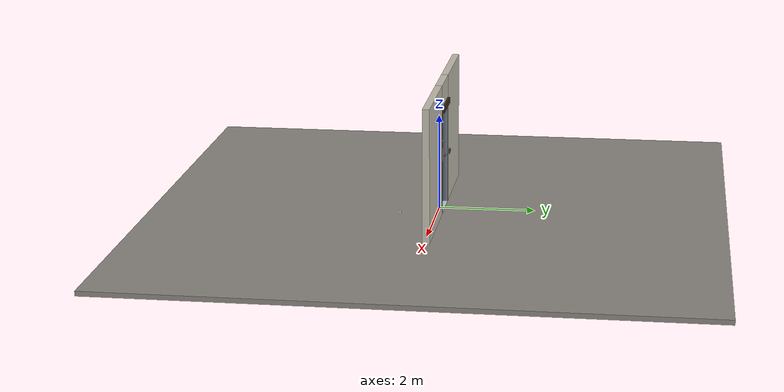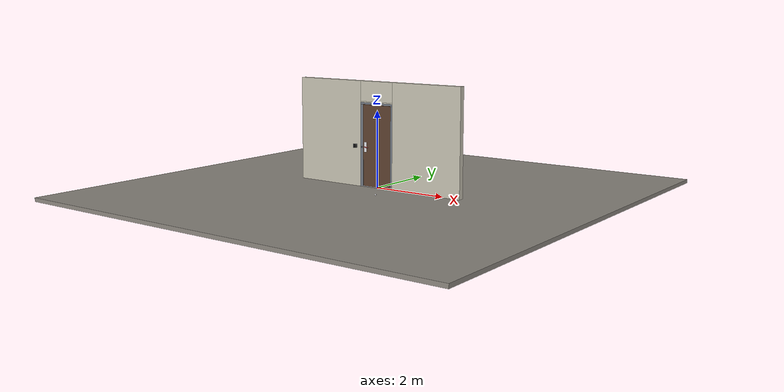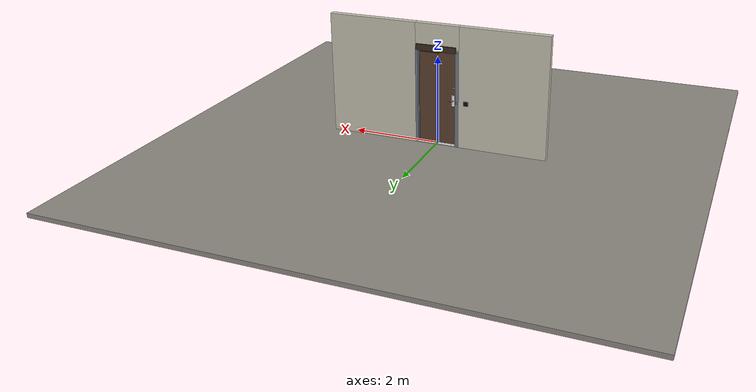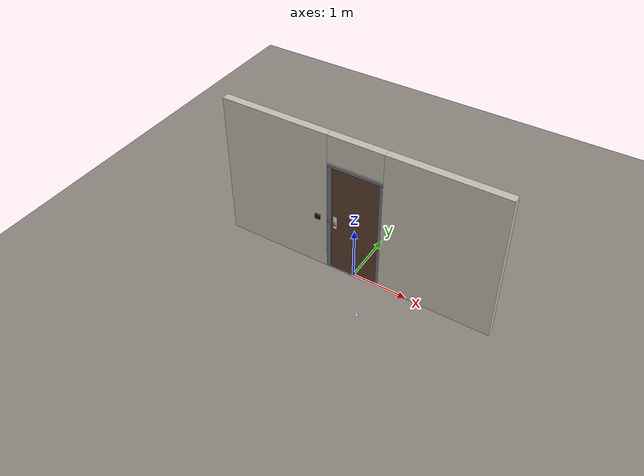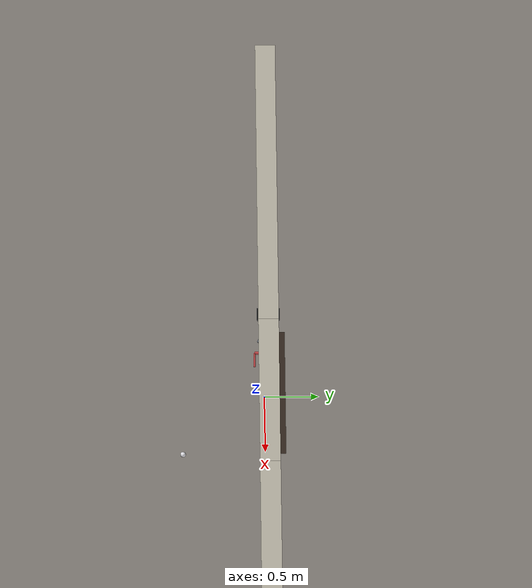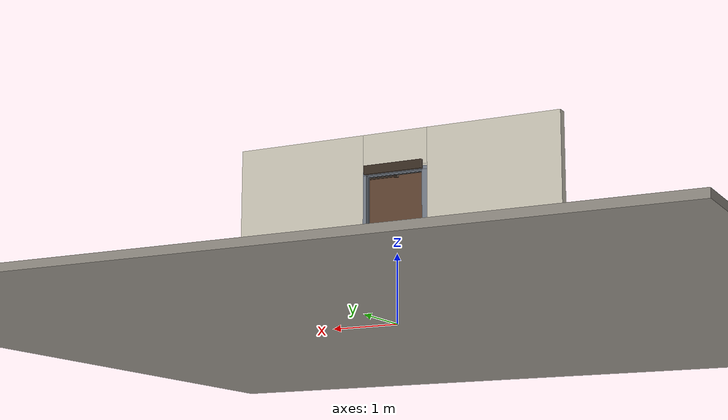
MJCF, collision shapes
<?xml version="1.0" ?>
<mujoco model="db0159_automatic_swing_full">
  <compiler angle="radian" meshdir="../../hardware" texturedir="../../textures" autolimits="true" inertiafromgeom="false"/>
  <option timestep="0.002" integrator="implicitfast" cone="elliptic" impratio="10" noslip_iterations="3">
    <flag multiccd="enable"/>
  </option>
  <size memory="16M"/>
  <default>
    <geom condim="4" solref="0.005 1" solimp="0.95 0.99 0.001"/>
    <joint solreflimit="0.005 1" solimplimit="0.95 0.99 0.001"/>
    <tendon solreflimit="0.005 1"/>
    <equality solref="0.002 1"/>
  </default>
  <visual>
    <headlight ambient="0.4 0.4 0.4" diffuse="0.7 0.7 0.7" specular="0.2 0.2 0.2"/>
    <quality shadowsize="4096"/>
    <map znear="0.01" zfar="60"/>
  </visual>
  <asset>
    <mesh name="card_reader_38c0bdb077" file="card_reader_38c0bdb077.obj"/>
    <mesh name="coat_hook_d622d37ad0" file="coat_hook_d622d37ad0.obj"/>
    <mesh name="hinge_e22b26c0c1" file="hinge_e22b26c0c1.obj"/>
    <mesh name="hinge_jamb_e1d088f8dc" file="hinge_jamb_e1d088f8dc.obj"/>
    <mesh name="lever_56c65af20a" file="lever_56c65af20a.obj"/>
    <mesh name="peephole_f829311a59" file="peephole_f829311a59.obj"/>
    <material name="mat_floor" rgba="0.55 0.53 0.5 1" specular="0.2" shininess="0.15" reflectance="0"/>
    <material name="mat_wall" rgba="0.78 0.76 0.7 1" specular="0.2" shininess="0.1" reflectance="0"/>
    <material name="mat_leaf" rgba="0.36 0.25 0.18 1" specular="0.2" shininess="0.55" reflectance="0"/>
    <material name="mat_hinge" rgba="0.65 0.66 0.68 1" specular="0.74" shininess="0.5" reflectance="0.36"/>
    <material name="mat_op_chrome" rgba="0.9 0.9 0.92 1" specular="0.8" shininess="0.9" reflectance="0.4"/>
    <material name="mat_trim" rgba="0.85 0.66 0.3 1" specular="0.8" shininess="0.75" reflectance="0.4"/>
    <material name="mat_reader" rgba="0.05 0.05 0.05 1" specular="0.38" shininess="0.3" reflectance="0.12"/>
    <material name="mat_bolt" rgba="0.75 0.76 0.77 1" specular="0.8" shininess="0.65" reflectance="0.4"/>
    <material name="mat_guard" rgba="0.75 0.76 0.77 1" specular="0.8" shininess="0.65" reflectance="0.4"/>
    <material name="mat_frame" rgba="0.45 0.48 0.52 1" specular="0.32" shininess="0.6" reflectance="0.08"/>
    <material name="mat_seal" rgba="0.1 0.1 0.1 1" specular="0.2" shininess="0.1" reflectance="0"/>
    <material name="mat_threshold" rgba="0.8 0.81 0.83 1" specular="0.8" shininess="0.6" reflectance="0.4"/>
    <material name="mat_closer" rgba="0.22 0.17 0.13 1" specular="0.8" shininess="0.6" reflectance="0.4"/>
    <material name="mat_peephole" rgba="0.85 0.66 0.3 1" specular="0.8" shininess="0.75" reflectance="0.4"/>
    <material name="mat_hook" rgba="0.9 0.9 0.92 1" specular="0.8" shininess="0.9" reflectance="0.4"/>
    <material name="mat_wallreader" rgba="0.05 0.05 0.05 1" specular="0.38" shininess="0.3" reflectance="0.12"/>
    <material name="mat_stop" rgba="0.9 0.9 0.92 1" specular="0.8" shininess="0.9" reflectance="0.4"/>
    <texture name="skybox" type="skybox" builtin="gradient" rgb1="0.6 0.7 0.85" rgb2="0.9 0.92 0.95" width="256" height="256"/>
  </asset>
  <worldbody>
    <light name="sun" pos="1.5 -2.5 4" dir="-0.3 0.5 -0.8" directional="true" diffuse="0.8 0.8 0.8" specular="0.3 0.3 0.3" castshadow="true"/>
    <light name="fill" pos="-1.5 2.5 3" dir="0.3 -0.5 -0.7" directional="true" diffuse="0.35 0.35 0.4" castshadow="false"/>
    <camera name="robot_view" pos="0 -2.594313 1.812087" xyaxes="1 0 0 0 0.26963 0.962964" fovy="52"/>
    <camera name="far_view" pos="0 2.681312 1.812087" xyaxes="-1 0 0 0 -0.26963 0.962964" fovy="52"/>
    <camera name="iso" pos="-2.004737 -2.172262 2.234138" xyaxes="0.741536 -0.670913 0 0.242917 0.268487 0.932151" fovy="46"/>
    <camera name="detail_handle" pos="-0.085 -0.877 1.32" xyaxes="0.97561 0.219512 0 -0.070934 0.315262 0.94635" fovy="38"/>
    <geom name="floor" type="box" size="6 6 0.05" pos="0 0 -0.05" material="mat_floor" group="0" contype="1" conaffinity="1" friction="0.8 0.005 0.0001" density="2400"/>
    <geom name="wall_left" type="box" size="0.992 0.0725 1.3735" pos="-1.508 0.0435 1.3735" material="mat_wall" group="0" contype="1" conaffinity="1" friction="0.6 0.005 0.0001" density="800"/>
    <geom name="wall_right" type="box" size="1.007 0.0725 1.3735" pos="1.493 0.0435 1.3735" material="mat_wall" group="0" contype="1" conaffinity="1" friction="0.6 0.005 0.0001" density="800"/>
    <geom name="wall_header" type="box" size="0.501 0.0725 0.26" pos="-0.015 0.0435 2.487" material="mat_wall" group="0" contype="1" conaffinity="1" friction="0.6 0.005 0.0001" density="800"/>
    <geom name="hinge_0_jamb" type="mesh" mesh="hinge_jamb_e1d088f8dc" pos="0.433 -0.029 0.267" quat="0 0 1 0" material="mat_hinge" group="1" contype="0" conaffinity="0" density="7850"/>
    <geom name="hinge_1_jamb" type="mesh" mesh="hinge_jamb_e1d088f8dc" pos="0.433 -0.029 1.08" quat="0 0 1 0" material="mat_hinge" group="1" contype="0" conaffinity="0" density="7850"/>
    <geom name="hinge_2_jamb" type="mesh" mesh="hinge_jamb_e1d088f8dc" pos="0.433 -0.029 1.963" quat="0 0 1 0" material="mat_hinge" group="1" contype="0" conaffinity="0" density="7850"/>
    <geom name="leaf_guard_bar" type="box" size="0.06 0.006 0.01" pos="-0.451 0.052 1.34" material="mat_guard" group="1" contype="0" conaffinity="0" density="7900"/>
    <geom name="jamb_hinge" type="box" size="0.025 0.0725 1.0735" pos="0.461 0.0435 1.0735" material="mat_frame" group="0" contype="1" conaffinity="1" friction="0.6 0.005 0.0001" density="300"/>
    <geom name="strike_1040_wall_n" type="box" size="0.04 0.05325 0.018" pos="-0.476 0.06275 1.04" material="mat_frame" group="0" contype="1" conaffinity="1" friction="0.6 0.005 0.0001" density="300"/>
    <geom name="strike_1040_wall_p" type="box" size="0.04 0.008 0.018" pos="-0.476 -0.0175 1.04" material="mat_frame" group="0" contype="1" conaffinity="1" friction="0.6 0.005 0.0001" density="300"/>
    <geom name="strike_1040_ramp" type="box" size="0.04 0.018028 0.018" pos="-0.479282 -0.018312 1.04" quat="0.957092 0 0 -0.289784" material="mat_frame" group="0" contype="1" conaffinity="1" friction="0.12 0.005 0.0001" density="300"/>
    <geom name="strike_1040_back" type="box" size="0.0285 0.0095 0.018" pos="-0.4875 0 1.04" material="mat_frame" group="0" contype="1" conaffinity="1" friction="0.6 0.005 0.0001" density="300"/>
    <geom name="jamb_strike_0" type="box" size="0.04 0.0725 0.511" pos="-0.476 0.0435 0.511" material="mat_frame" group="0" contype="1" conaffinity="1" friction="0.6 0.005 0.0001" density="300"/>
    <geom name="jamb_strike_1" type="box" size="0.04 0.0725 0.5445" pos="-0.476 0.0435 1.6025" material="mat_frame" group="0" contype="1" conaffinity="1" friction="0.6 0.005 0.0001" density="300"/>
    <geom name="jamb_head" type="box" size="0.501 0.0725 0.025" pos="-0.015 0.0435 2.172" material="mat_frame" group="0" contype="1" conaffinity="1" friction="0.6 0.005 0.0001" density="300"/>
    <geom name="head_stud" type="box" size="0.501 0.0725 0.015" pos="-0.015 0.0435 2.212" material="mat_wall" group="0" contype="1" conaffinity="1" friction="0.6 0.005 0.0001" density="500"/>
    <geom name="stop_hinge" type="box" size="0.0055 0.016 1.0735" pos="0.4305 0.0385 1.0735" material="mat_frame" group="0" contype="1" conaffinity="1" friction="0.6 0.005 0.0001" density="300"/>
    <geom name="stop_strike" type="box" size="0.0055 0.016 1.0735" pos="-0.4305 0.0385 1.0735" material="mat_frame" group="0" contype="1" conaffinity="1" friction="0.6 0.005 0.0001" density="300"/>
    <geom name="stop_head" type="box" size="0.436 0.016 0.0055" pos="0 0.0385 2.1415" material="mat_frame" group="0" contype="1" conaffinity="1" friction="0.6 0.005 0.0001" density="300"/>
    <geom name="seal_hinge" type="box" size="0.004 0.004 1.0735" pos="0.433 0.026 1.0735" material="mat_seal" group="1" contype="0" conaffinity="0" density="1100"/>
    <geom name="seal_strike" type="box" size="0.004 0.004 1.0735" pos="-0.433 0.026 1.0735" material="mat_seal" group="1" contype="0" conaffinity="0" density="1100"/>
    <geom name="seal_head" type="box" size="0.416 0.004 0.008" pos="0 0.026 2.135" material="mat_seal" group="1" contype="0" conaffinity="0" density="1100"/>
    <geom name="threshold" type="box" size="0.486 0.0725 0.0065" pos="0 0.0435 0.0065" material="mat_threshold" group="0" contype="1" conaffinity="1" friction="0.5 0.005 0.0001" density="2700"/>
    <geom name="auto_operator_header" type="box" size="0.45 0.065 0.065" pos="0 0.097 2.22" material="mat_closer" group="0" contype="1" conaffinity="1" friction="0.6 0.005 0.0001" density="1500"/>
    <geom name="wave_sensor_n" type="box" size="0.05 0.012 0.05" pos="-0.686 -0.041 1.05" material="mat_wallreader" group="0" contype="1" conaffinity="1" friction="0.6 0.005 0.0001" density="1000"/>
    <geom name="wave_sensor_p" type="box" size="0.05 0.012 0.05" pos="-0.686 0.128 1.05" material="mat_wallreader" group="0" contype="1" conaffinity="1" friction="0.6 0.005 0.0001" density="1000"/>
    <geom name="wave_sensor_p_pad" type="box" size="0.04 0.073 0.04" pos="-0.686 0.0435 1.05" material="mat_wallreader" group="1" contype="0" conaffinity="0" density="7850"/>
    <geom name="floor_stop_dome" type="sphere" size="0.025" pos="0.516931 -0.758862 0" material="mat_stop" group="0" contype="1" conaffinity="1" friction="0.6 0.005 0.0001" density="7000"/>
    <site name="approach_point" pos="0 -1.5 0" quat="1 0 0 0" size="0.05" rgba="0.2 0.9 0.2 0.5" group="4"/>
    <site name="goal_point" pos="0 1.5 0" quat="1 0 0 0" size="0.05" rgba="0.2 0.9 0.2 0.5" group="4"/>
    <site name="door_plane_center" pos="0 0 1.0735" quat="1 0 0 0" size="0.02" rgba="0.2 0.9 0.2 0.5" group="4"/>
    <body name="leaf" pos="0.436 0 0">
      <inertial pos="-0.436477 -0.00021 1.09219" mass="52.703252" quat="0.500563 -0.500344 -0.500211 -0.49888" diaginertia="3.450430152 19.801748654 23.23037945"/>
      <joint name="leaf_hinge" type="hinge" axis="0 0 1" pos="-0.003 -0.029 0" limited="true" range="0 0.078615" solreflimit="0.02 1" damping="15.214767" frictionloss="1.957652" stiffness="12.827888" springref="-1.543512" armature="0.02"/>
      <geom name="leaf_slab" type="box" size="0.432 0.022 1.063" pos="-0.435 0 1.08" material="mat_leaf" group="0" contype="1" conaffinity="1" friction="0.35 0.005 0.0001" density="1"/>
      <geom name="hinge_0" type="mesh" mesh="hinge_e22b26c0c1" pos="-0.003 -0.029 0.267" quat="0 0 1 0" material="mat_hinge" group="1" contype="0" conaffinity="0" density="7850"/>
      <geom name="hinge_1" type="mesh" mesh="hinge_e22b26c0c1" pos="-0.003 -0.029 1.08" quat="0 0 1 0" material="mat_hinge" group="1" contype="0" conaffinity="0" density="7850"/>
      <geom name="hinge_2" type="mesh" mesh="hinge_e22b26c0c1" pos="-0.003 -0.029 1.963" quat="0 0 1 0" material="mat_hinge" group="1" contype="0" conaffinity="0" density="7850"/>
      <geom name="leaf_handle_escutcheon_n" type="box" size="0.0375 0.0015 0.13" pos="-0.797 -0.0235 1.04" material="mat_op_chrome" group="1" contype="0" conaffinity="0" density="3000"/>
      <geom name="leaf_handle_escutcheon_p" type="box" size="0.0375 0.0015 0.13" pos="-0.797 0.0235 1.04" material="mat_op_chrome" group="1" contype="0" conaffinity="0" density="3000"/>
      <geom name="leaf_handle_reader" type="mesh" mesh="card_reader_38c0bdb077" pos="-0.797 -0.022 1.2" quat="0.707107 0.707107 0 0" material="mat_reader" group="1" contype="0" conaffinity="0" density="2000"/>
      <geom name="leaf_latch_bolt_faceplate" type="box" size="0.0006 0.014 0.028" pos="-0.8664 0 1.04" material="mat_bolt" group="1" contype="0" conaffinity="0" density="8500"/>
      <geom name="leaf_guard_stud" type="cylinder" size="0.01 0.015" pos="-0.817 0.037 1.34" quat="0.707107 -0.707107 0 0" material="mat_guard" group="1" contype="0" conaffinity="0" density="7900"/>
      <geom name="auto_operator_arm" type="box" size="0.22 0.008 0.008" pos="-0.25 0.052 2.106" material="mat_closer" group="1" contype="0" conaffinity="0" density="2700"/>
      <geom name="auto_operator_arm_shoe" type="box" size="0.03 0.016 0.014" pos="-0.44 0.038 2.106" material="mat_closer" group="1" contype="0" conaffinity="0" density="2700"/>
      <geom name="peephole" type="mesh" mesh="peephole_f829311a59" pos="-0.435 -0.022 1.517" quat="0 0 -0.707107 0.707107" material="mat_peephole" group="2" contype="0" conaffinity="0" density="8500"/>
      <geom name="coat_hook" type="mesh" mesh="coat_hook_d622d37ad0" pos="-0.435 0.022 1.793" quat="0 0 0.707107 0.707107" material="mat_hook" group="2" contype="0" conaffinity="0" density="7000"/>
      <site name="leaf_edge_mid" pos="-0.867 0 1.063" quat="1 0 0 0" size="0.02" rgba="0.2 0.9 0.2 0.5" group="4"/>
      <body name="leaf_handle" pos="-0.797 0 1.04">
        <inertial pos="0.034904 0 0" mass="0.739068" quat="0.707107 0 0 -0.707107" diaginertia="0.001260094 0.003272501 0.004494637"/>
        <joint name="leaf_handle_hinge" type="hinge" axis="0 1 0" limited="true" range="0 0.87" damping="0.231314" frictionloss="0.06" stiffness="1.1" springref="-0.454545" armature="0.01"/>
        <geom name="leaf_handle_spindle" type="cylinder" size="0.006 0.034" pos="0 0 0" quat="0.707107 -0.707107 0 0" material="mat_op_chrome" group="1" contype="0" conaffinity="0" density="7850"/>
        <geom name="leaf_handle_lever_n" type="mesh" mesh="lever_56c65af20a" pos="0 -0.022 0" quat="0 0 -0.707107 0.707107" material="mat_op_chrome" group="1" contype="0" conaffinity="0" density="3000"/>
        <geom name="leaf_handle_lever_col_n" type="capsule" size="0.0095 0.0505" pos="0.06 -0.077 0" quat="0.707107 0 0.707107 0" material="mat_op_chrome" group="3" contype="1" conaffinity="1" rgba="0.8 0.3 0.3 0.25" friction="0.7 0.01 0.0001" density="3000"/>
        <geom name="leaf_handle_hub_col_n" type="cylinder" size="0.012 0.022" pos="0 -0.052 0" quat="0.707107 -0.707107 0 0" material="mat_op_chrome" group="3" contype="1" conaffinity="1" rgba="0.8 0.3 0.3 0.25" friction="0.6 0.005 0.0001" density="3000"/>
        <geom name="leaf_handle_lever_p" type="mesh" mesh="lever_56c65af20a" pos="0 0.022 0" quat="0 0 0.707107 0.707107" material="mat_op_chrome" group="1" contype="0" conaffinity="0" density="3000"/>
        <geom name="leaf_handle_lever_col_p" type="capsule" size="0.0095 0.0505" pos="0.06 0.077 0" quat="0.707107 0 0.707107 0" material="mat_op_chrome" group="3" contype="1" conaffinity="1" rgba="0.8 0.3 0.3 0.25" friction="0.7 0.01 0.0001" density="3000"/>
        <geom name="leaf_handle_hub_col_p" type="cylinder" size="0.012 0.022" pos="0 0.052 0" quat="0.707107 -0.707107 0 0" material="mat_op_chrome" group="3" contype="1" conaffinity="1" rgba="0.8 0.3 0.3 0.25" friction="0.6 0.005 0.0001" density="3000"/>
        <site name="leaf_handle_grip_n" pos="0.096 -0.077 0" quat="1 0 0 0" size="0.012" rgba="0.2 0.9 0.2 0.5" group="4"/>
        <site name="leaf_handle_grip_p" pos="0.096 0.077 0" quat="1 0 0 0" size="0.012" rgba="0.2 0.9 0.2 0.5" group="4"/>
      </body>
      <body name="leaf_latch_bolt" pos="-0.867 0 1.04">
        <inertial pos="0.0055 0 0" mass="0.074627" quat="0.92388 0.382683 0 0" diaginertia="0.000002271 0.000013255 0.000013255"/>
        <joint name="leaf_latch_bolt_slide" type="slide" axis="1 0 0" limited="true" range="0 0.019" damping="2" frictionloss="0.3" stiffness="550" springref="-0.01" armature="0.1"/>
        <geom name="leaf_latch_bolt_capsule" type="capsule" size="0.008 0.0165" pos="0.0055 0 0" quat="0.707107 0 -0.707107 0" material="mat_bolt" group="0" contype="1" conaffinity="1" friction="0.2 0.005 0.0001" density="8500"/>
      </body>
    </body>
  </worldbody>
  <tendon>
    <fixed name="leaf_latch_bolt_coupling" limited="true" range="0 10">
      <joint joint="leaf_latch_bolt_slide" coef="1"/>
      <joint joint="leaf_handle_hinge" coef="-0.023457"/>
    </fixed>
  </tendon>
  <actuator>
    <position name="swing_operator" joint="leaf_hinge" kp="150" kv="40" forcerange="-60 60" ctrlrange="0 1.6"/>
  </actuator>
  <sensor>
    <jointpos name="leaf_hinge_pos" joint="leaf_hinge"/>
    <jointvel name="leaf_hinge_vel" joint="leaf_hinge"/>
    <jointpos name="leaf_handle_hinge_pos" joint="leaf_handle_hinge"/>
    <jointvel name="leaf_handle_hinge_vel" joint="leaf_handle_hinge"/>
    <jointpos name="leaf_latch_bolt_slide_pos" joint="leaf_latch_bolt_slide"/>
    <jointvel name="leaf_latch_bolt_slide_vel" joint="leaf_latch_bolt_slide"/>
  </sensor>
</mujoco>
